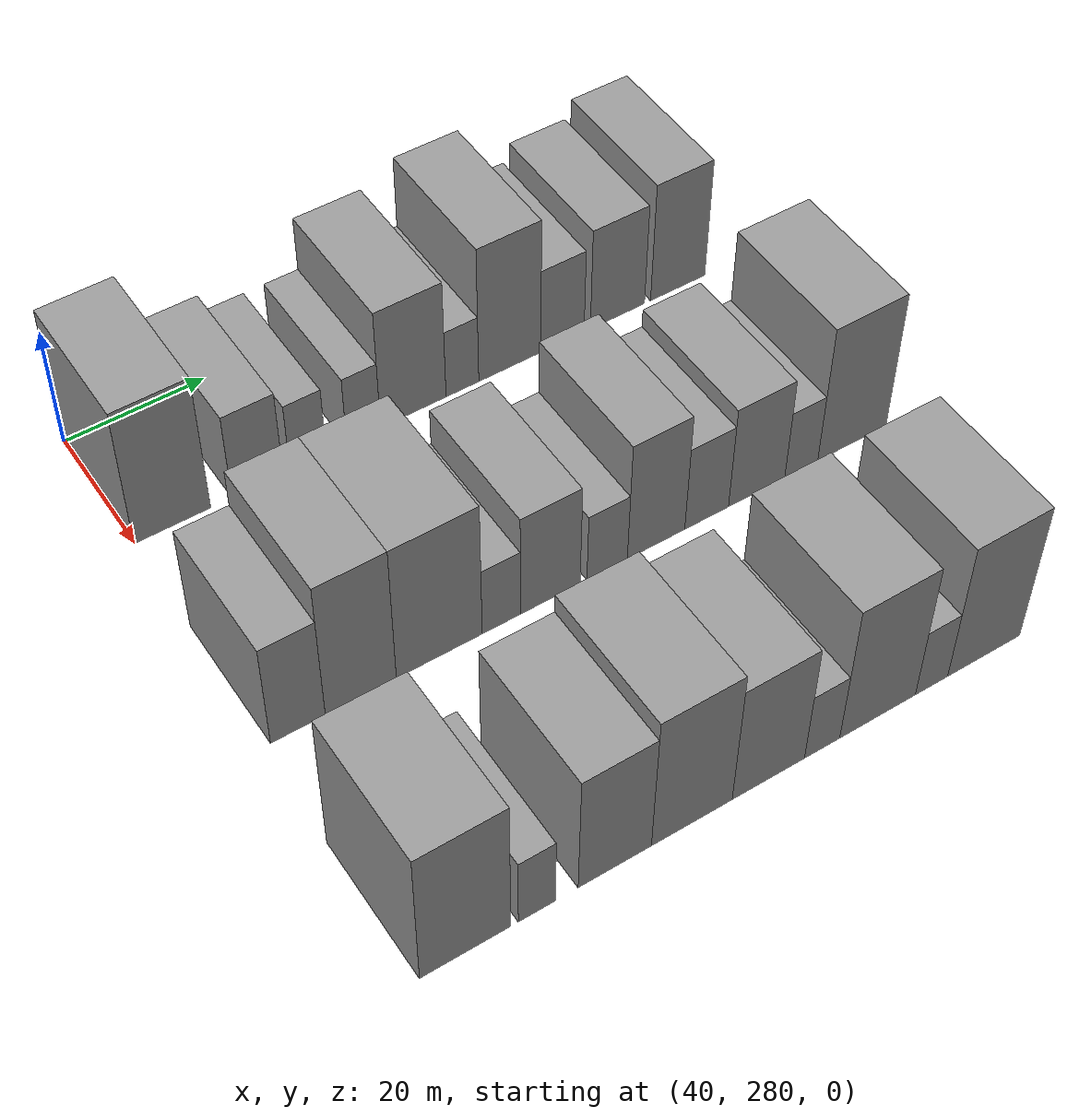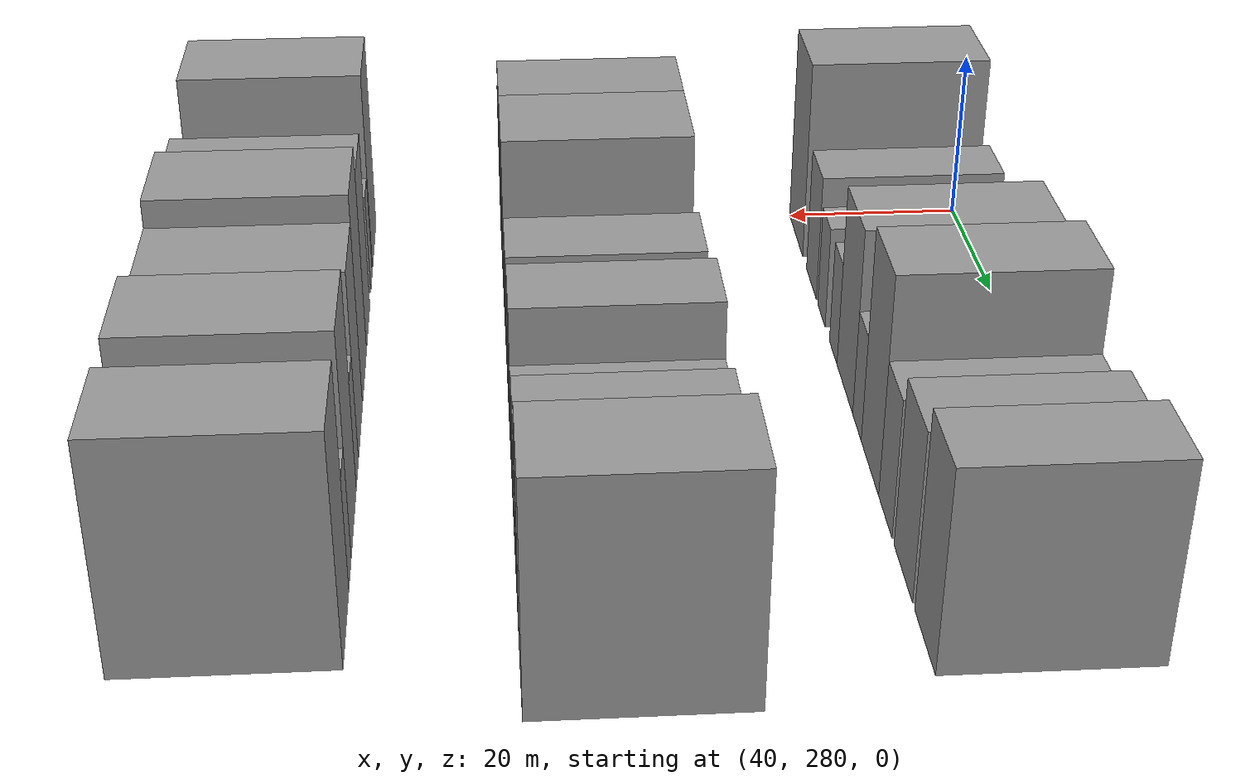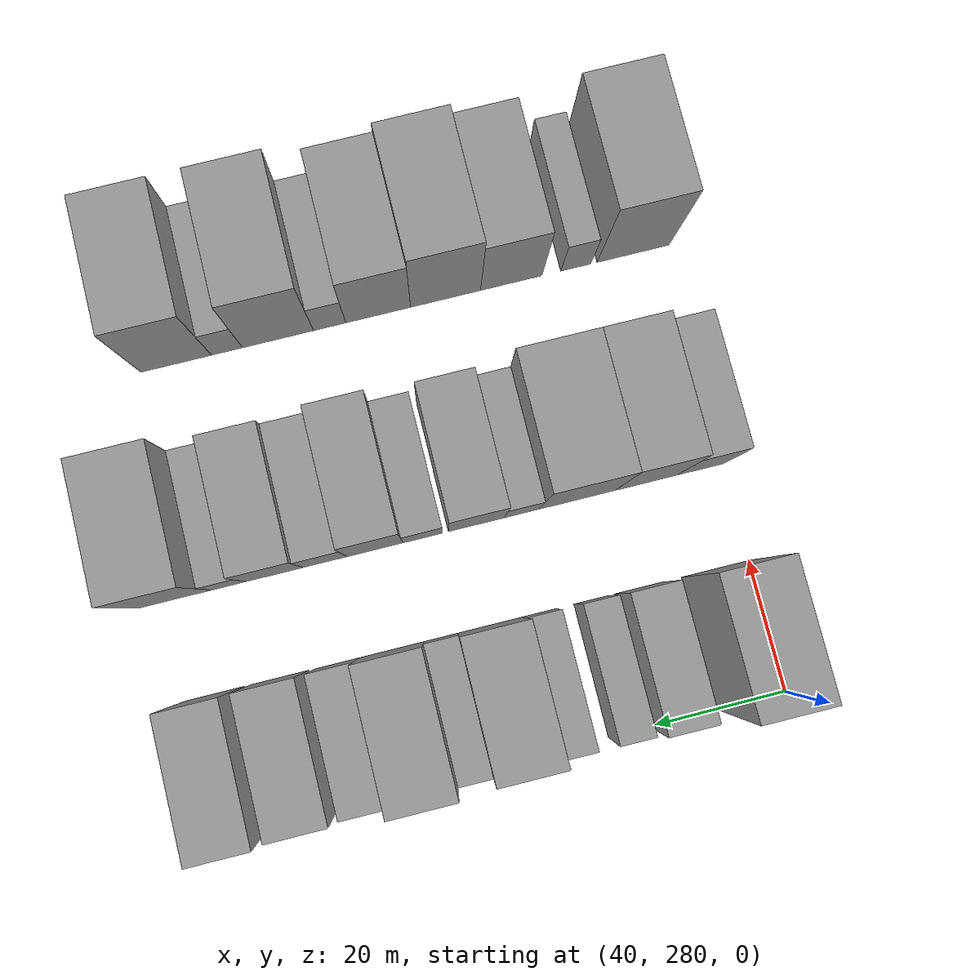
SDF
<sdf version="1.6">
 <world name="default">
  <model name="building_74">
   <static>1</static>
   <pose>50.0000 285.1842 0 0.000000 0.000000 0.000000</pose>
   <link name="link">
    <pose>0 0 12.00 0 0 0</pose>
    <collision name="collision"><geometry><box><size>20.0000 10.6870 24.0000</size></box></geometry></collision>
    <visual name="visual">
     <cast_shadows>0</cast_shadows>
     <geometry><box><size>20.0000 10.6870 24.0000</size></box></geometry>
     <material>
      <script>
       <uri>model://grey_wall/materials/scripts</uri>
       <uri>model://grey_wall/materials/textures</uri>
       <name>vrc/grey_wall</name>
      </script>
     </material>
    </visual>
   </link>
  </model>
  <model name="building_75">
   <static>1</static>
   <pose>50.0000 297.2003 0 0.000000 0.000000 0.000000</pose>
   <link name="link">
    <pose>0 0 7.50 0 0 0</pose>
    <collision name="collision"><geometry><box><size>20.0000 7.3452 15.0000</size></box></geometry></collision>
    <visual name="visual">
     <cast_shadows>0</cast_shadows>
     <geometry><box><size>20.0000 7.3452 15.0000</size></box></geometry>
     <material>
      <script>
       <uri>model://grey_wall/materials/scripts</uri>
       <uri>model://grey_wall/materials/textures</uri>
       <name>vrc/grey_wall</name>
      </script>
     </material>
    </visual>
   </link>
  </model>
  <model name="building_76">
   <static>1</static>
   <pose>50.0000 304.5186 0 0.000000 0.000000 0.000000</pose>
   <link name="link">
    <pose>0 0 6.00 0 0 0</pose>
    <collision name="collision"><geometry><box><size>20.0000 5.2914 12.0000</size></box></geometry></collision>
    <visual name="visual">
     <cast_shadows>0</cast_shadows>
     <geometry><box><size>20.0000 5.2914 12.0000</size></box></geometry>
     <material>
      <script>
       <uri>model://grey_wall/materials/scripts</uri>
       <uri>model://grey_wall/materials/textures</uri>
       <name>vrc/grey_wall</name>
      </script>
     </material>
    </visual>
   </link>
  </model>
  <model name="building_77">
   <static>1</static>
   <pose>50.0000 312.6815 0 0.000000 0.000000 0.000000</pose>
   <link name="link">
    <pose>0 0 6.00 0 0 0</pose>
    <collision name="collision"><geometry><box><size>20.0000 5.0343 12.0000</size></box></geometry></collision>
    <visual name="visual">
     <cast_shadows>0</cast_shadows>
     <geometry><box><size>20.0000 5.0343 12.0000</size></box></geometry>
     <material>
      <script>
       <uri>model://grey_wall/materials/scripts</uri>
       <uri>model://grey_wall/materials/textures</uri>
       <name>vrc/grey_wall</name>
      </script>
     </material>
    </visual>
   </link>
  </model>
  <model name="building_78">
   <static>1</static>
   <pose>50.0000 320.1442 0 0.000000 0.000000 0.000000</pose>
   <link name="link">
    <pose>0 0 10.50 0 0 0</pose>
    <collision name="collision"><geometry><box><size>20.0000 9.8911 21.0000</size></box></geometry></collision>
    <visual name="visual">
     <cast_shadows>0</cast_shadows>
     <geometry><box><size>20.0000 9.8911 21.0000</size></box></geometry>
     <material>
      <script>
       <uri>model://grey_wall/materials/scripts</uri>
       <uri>model://grey_wall/materials/textures</uri>
       <name>vrc/grey_wall</name>
      </script>
     </material>
    </visual>
   </link>
  </model>
  <model name="building_79">
   <static>1</static>
   <pose>50.0000 327.6104 0 0.000000 0.000000 0.000000</pose>
   <link name="link">
    <pose>0 0 6.00 0 0 0</pose>
    <collision name="collision"><geometry><box><size>20.0000 5.0414 12.0000</size></box></geometry></collision>
    <visual name="visual">
     <cast_shadows>0</cast_shadows>
     <geometry><box><size>20.0000 5.0414 12.0000</size></box></geometry>
     <material>
      <script>
       <uri>model://grey_wall/materials/scripts</uri>
       <uri>model://grey_wall/materials/textures</uri>
       <name>vrc/grey_wall</name>
      </script>
     </material>
    </visual>
   </link>
  </model>
  <model name="building_80">
   <static>1</static>
   <pose>50.0000 334.9761 0 0.000000 0.000000 0.000000</pose>
   <link name="link">
    <pose>0 0 12.00 0 0 0</pose>
    <collision name="collision"><geometry><box><size>20.0000 9.6899 24.0000</size></box></geometry></collision>
    <visual name="visual">
     <cast_shadows>0</cast_shadows>
     <geometry><box><size>20.0000 9.6899 24.0000</size></box></geometry>
     <material>
      <script>
       <uri>model://grey_wall/materials/scripts</uri>
       <uri>model://grey_wall/materials/textures</uri>
       <name>vrc/grey_wall</name>
      </script>
     </material>
    </visual>
   </link>
  </model>
  <model name="building_81">
   <static>1</static>
   <pose>50.0000 343.2819 0 0.000000 0.000000 0.000000</pose>
   <link name="link">
    <pose>0 0 7.50 0 0 0</pose>
    <collision name="collision"><geometry><box><size>20.0000 6.9216 15.0000</size></box></geometry></collision>
    <visual name="visual">
     <cast_shadows>0</cast_shadows>
     <geometry><box><size>20.0000 6.9216 15.0000</size></box></geometry>
     <material>
      <script>
       <uri>model://grey_wall/materials/scripts</uri>
       <uri>model://grey_wall/materials/textures</uri>
       <name>vrc/grey_wall</name>
      </script>
     </material>
    </visual>
   </link>
  </model>
  <model name="building_82">
   <static>1</static>
   <pose>50.0000 352.1523 0 0.000000 0.000000 0.000000</pose>
   <link name="link">
    <pose>0 0 9.00 0 0 0</pose>
    <collision name="collision"><geometry><box><size>20.0000 8.8193 18.0000</size></box></geometry></collision>
    <visual name="visual">
     <cast_shadows>0</cast_shadows>
     <geometry><box><size>20.0000 8.8193 18.0000</size></box></geometry>
     <material>
      <script>
       <uri>model://grey_wall/materials/scripts</uri>
       <uri>model://grey_wall/materials/textures</uri>
       <name>vrc/grey_wall</name>
      </script>
     </material>
    </visual>
   </link>
  </model>
  <model name="building_83">
   <static>1</static>
   <pose>50.0000 362.0714 0 0.000000 0.000000 0.000000</pose>
   <link name="link">
    <pose>0 0 10.50 0 0 0</pose>
    <collision name="collision"><geometry><box><size>20.0000 9.0189 21.0000</size></box></geometry></collision>
    <visual name="visual">
     <cast_shadows>0</cast_shadows>
     <geometry><box><size>20.0000 9.0189 21.0000</size></box></geometry>
     <material>
      <script>
       <uri>model://grey_wall/materials/scripts</uri>
       <uri>model://grey_wall/materials/textures</uri>
       <name>vrc/grey_wall</name>
      </script>
     </material>
    </visual>
   </link>
  </model>
  <model name="building_150">
   <static>1</static>
   <pose>85.0000 283.4918 0 0.000000 0.000000 0.000000</pose>
   <link name="link">
    <pose>0 0 9.00 0 0 0</pose>
    <collision name="collision"><geometry><box><size>20.0000 7.2559 18.0000</size></box></geometry></collision>
    <visual name="visual">
     <cast_shadows>0</cast_shadows>
     <geometry><box><size>20.0000 7.2559 18.0000</size></box></geometry>
     <material>
      <script>
       <uri>model://grey_wall/materials/scripts</uri>
       <uri>model://grey_wall/materials/textures</uri>
       <name>vrc/grey_wall</name>
      </script>
     </material>
    </visual>
   </link>
  </model>
  <model name="building_151">
   <static>1</static>
   <pose>85.0000 291.9271 0 0.000000 0.000000 0.000000</pose>
   <link name="link">
    <pose>0 0 12.00 0 0 0</pose>
    <collision name="collision"><geometry><box><size>20.0000 9.6149 24.0000</size></box></geometry></collision>
    <visual name="visual">
     <cast_shadows>0</cast_shadows>
     <geometry><box><size>20.0000 9.6149 24.0000</size></box></geometry>
     <material>
      <script>
       <uri>model://grey_wall/materials/scripts</uri>
       <uri>model://grey_wall/materials/textures</uri>
       <name>vrc/grey_wall</name>
      </script>
     </material>
    </visual>
   </link>
  </model>
  <model name="building_152">
   <static>1</static>
   <pose>85.0000 302.7061 0 0.000000 0.000000 0.000000</pose>
   <link name="link">
    <pose>0 0 12.00 0 0 0</pose>
    <collision name="collision"><geometry><box><size>20.0000 11.9430 24.0000</size></box></geometry></collision>
    <visual name="visual">
     <cast_shadows>0</cast_shadows>
     <geometry><box><size>20.0000 11.9430 24.0000</size></box></geometry>
     <material>
      <script>
       <uri>model://grey_wall/materials/scripts</uri>
       <uri>model://grey_wall/materials/textures</uri>
       <name>vrc/grey_wall</name>
      </script>
     </material>
    </visual>
   </link>
  </model>
  <model name="building_153">
   <static>1</static>
   <pose>85.0000 311.3905 0 0.000000 0.000000 0.000000</pose>
   <link name="link">
    <pose>0 0 6.00 0 0 0</pose>
    <collision name="collision"><geometry><box><size>20.0000 5.4257 12.0000</size></box></geometry></collision>
    <visual name="visual">
     <cast_shadows>0</cast_shadows>
     <geometry><box><size>20.0000 5.4257 12.0000</size></box></geometry>
     <material>
      <script>
       <uri>model://grey_wall/materials/scripts</uri>
       <uri>model://grey_wall/materials/textures</uri>
       <name>vrc/grey_wall</name>
      </script>
     </material>
    </visual>
   </link>
  </model>
  <model name="building_154">
   <static>1</static>
   <pose>85.0000 318.4247 0 0.000000 0.000000 0.000000</pose>
   <link name="link">
    <pose>0 0 9.00 0 0 0</pose>
    <collision name="collision"><geometry><box><size>20.0000 8.6428 18.0000</size></box></geometry></collision>
    <visual name="visual">
     <cast_shadows>0</cast_shadows>
     <geometry><box><size>20.0000 8.6428 18.0000</size></box></geometry>
     <material>
      <script>
       <uri>model://grey_wall/materials/scripts</uri>
       <uri>model://grey_wall/materials/textures</uri>
       <name>vrc/grey_wall</name>
      </script>
     </material>
    </visual>
   </link>
  </model>
  <model name="building_155">
   <static>1</static>
   <pose>85.0000 326.7354 0 0.000000 0.000000 0.000000</pose>
   <link name="link">
    <pose>0 0 6.00 0 0 0</pose>
    <collision name="collision"><geometry><box><size>20.0000 5.9786 12.0000</size></box></geometry></collision>
    <visual name="visual">
     <cast_shadows>0</cast_shadows>
     <geometry><box><size>20.0000 5.9786 12.0000</size></box></geometry>
     <material>
      <script>
       <uri>model://grey_wall/materials/scripts</uri>
       <uri>model://grey_wall/materials/textures</uri>
       <name>vrc/grey_wall</name>
      </script>
     </material>
    </visual>
   </link>
  </model>
  <model name="building_156">
   <static>1</static>
   <pose>85.0000 334.0470 0 0.000000 0.000000 0.000000</pose>
   <link name="link">
    <pose>0 0 10.50 0 0 0</pose>
    <collision name="collision"><geometry><box><size>20.0000 8.6446 21.0000</size></box></geometry></collision>
    <visual name="visual">
     <cast_shadows>0</cast_shadows>
     <geometry><box><size>20.0000 8.6446 21.0000</size></box></geometry>
     <material>
      <script>
       <uri>model://grey_wall/materials/scripts</uri>
       <uri>model://grey_wall/materials/textures</uri>
       <name>vrc/grey_wall</name>
      </script>
     </material>
    </visual>
   </link>
  </model>
  <model name="building_157">
   <static>1</static>
   <pose>85.0000 341.7238 0 0.000000 0.000000 0.000000</pose>
   <link name="link">
    <pose>0 0 7.50 0 0 0</pose>
    <collision name="collision"><geometry><box><size>20.0000 6.7090 15.0000</size></box></geometry></collision>
    <visual name="visual">
     <cast_shadows>0</cast_shadows>
     <geometry><box><size>20.0000 6.7090 15.0000</size></box></geometry>
     <material>
      <script>
       <uri>model://grey_wall/materials/scripts</uri>
       <uri>model://grey_wall/materials/textures</uri>
       <name>vrc/grey_wall</name>
      </script>
     </material>
    </visual>
   </link>
  </model>
  <model name="building_158">
   <static>1</static>
   <pose>85.0000 349.4756 0 0.000000 0.000000 0.000000</pose>
   <link name="link">
    <pose>0 0 9.00 0 0 0</pose>
    <collision name="collision"><geometry><box><size>20.0000 8.7945 18.0000</size></box></geometry></collision>
    <visual name="visual">
     <cast_shadows>0</cast_shadows>
     <geometry><box><size>20.0000 8.7945 18.0000</size></box></geometry>
     <material>
      <script>
       <uri>model://grey_wall/materials/scripts</uri>
       <uri>model://grey_wall/materials/textures</uri>
       <name>vrc/grey_wall</name>
      </script>
     </material>
    </visual>
   </link>
  </model>
  <model name="building_159">
   <static>1</static>
   <pose>85.0000 356.4946 0 0.000000 0.000000 0.000000</pose>
   <link name="link">
    <pose>0 0 6.00 0 0 0</pose>
    <collision name="collision"><geometry><box><size>20.0000 5.2436 12.0000</size></box></geometry></collision>
    <visual name="visual">
     <cast_shadows>0</cast_shadows>
     <geometry><box><size>20.0000 5.2436 12.0000</size></box></geometry>
     <material>
      <script>
       <uri>model://grey_wall/materials/scripts</uri>
       <uri>model://grey_wall/materials/textures</uri>
       <name>vrc/grey_wall</name>
      </script>
     </material>
    </visual>
   </link>
  </model>
  <model name="building_160">
   <static>1</static>
   <pose>85.0000 364.6530 0 0.000000 0.000000 0.000000</pose>
   <link name="link">
    <pose>0 0 12.00 0 0 0</pose>
    <collision name="collision"><geometry><box><size>20.0000 11.0730 24.0000</size></box></geometry></collision>
    <visual name="visual">
     <cast_shadows>0</cast_shadows>
     <geometry><box><size>20.0000 11.0730 24.0000</size></box></geometry>
     <material>
      <script>
       <uri>model://grey_wall/materials/scripts</uri>
       <uri>model://grey_wall/materials/textures</uri>
       <name>vrc/grey_wall</name>
      </script>
     </material>
    </visual>
   </link>
  </model>
  <model name="building_227">
   <static>1</static>
   <pose>120.0000 284.5555 0 0.000000 0.000000 0.000000</pose>
   <link name="link">
    <pose>0 0 12.00 0 0 0</pose>
    <collision name="collision"><geometry><box><size>20.0000 11.5598 24.0000</size></box></geometry></collision>
    <visual name="visual">
     <cast_shadows>0</cast_shadows>
     <geometry><box><size>20.0000 11.5598 24.0000</size></box></geometry>
     <material>
      <script>
       <uri>model://grey_wall/materials/scripts</uri>
       <uri>model://grey_wall/materials/textures</uri>
       <name>vrc/grey_wall</name>
      </script>
     </material>
    </visual>
   </link>
  </model>
  <model name="building_228">
   <static>1</static>
   <pose>120.0000 293.7430 0 0.000000 0.000000 0.000000</pose>
   <link name="link">
    <pose>0 0 6.00 0 0 0</pose>
    <collision name="collision"><geometry><box><size>20.0000 4.8150 12.0000</size></box></geometry></collision>
    <visual name="visual">
     <cast_shadows>0</cast_shadows>
     <geometry><box><size>20.0000 4.8150 12.0000</size></box></geometry>
     <material>
      <script>
       <uri>model://grey_wall/materials/scripts</uri>
       <uri>model://grey_wall/materials/textures</uri>
       <name>vrc/grey_wall</name>
      </script>
     </material>
    </visual>
   </link>
  </model>
  <model name="building_229">
   <static>1</static>
   <pose>120.0000 304.0560 0 0.000000 0.000000 0.000000</pose>
   <link name="link">
    <pose>0 0 10.50 0 0 0</pose>
    <collision name="collision"><geometry><box><size>20.0000 9.8111 21.0000</size></box></geometry></collision>
    <visual name="visual">
     <cast_shadows>0</cast_shadows>
     <geometry><box><size>20.0000 9.8111 21.0000</size></box></geometry>
     <material>
      <script>
       <uri>model://grey_wall/materials/scripts</uri>
       <uri>model://grey_wall/materials/textures</uri>
       <name>vrc/grey_wall</name>
      </script>
     </material>
    </visual>
   </link>
  </model>
  <model name="building_230">
   <static>1</static>
   <pose>120.0000 314.5234 0 0.000000 0.000000 0.000000</pose>
   <link name="link">
    <pose>0 0 12.00 0 0 0</pose>
    <collision name="collision"><geometry><box><size>20.0000 11.1237 24.0000</size></box></geometry></collision>
    <visual name="visual">
     <cast_shadows>0</cast_shadows>
     <geometry><box><size>20.0000 11.1237 24.0000</size></box></geometry>
     <material>
      <script>
       <uri>model://grey_wall/materials/scripts</uri>
       <uri>model://grey_wall/materials/textures</uri>
       <name>vrc/grey_wall</name>
      </script>
     </material>
    </visual>
   </link>
  </model>
  <model name="building_231">
   <static>1</static>
   <pose>120.0000 325.2143 0 0.000000 0.000000 0.000000</pose>
   <link name="link">
    <pose>0 0 10.50 0 0 0</pose>
    <collision name="collision"><geometry><box><size>20.0000 10.2581 21.0000</size></box></geometry></collision>
    <visual name="visual">
     <cast_shadows>0</cast_shadows>
     <geometry><box><size>20.0000 10.2581 21.0000</size></box></geometry>
     <material>
      <script>
       <uri>model://grey_wall/materials/scripts</uri>
       <uri>model://grey_wall/materials/textures</uri>
       <name>vrc/grey_wall</name>
      </script>
     </material>
    </visual>
   </link>
  </model>
  <model name="building_232">
   <static>1</static>
   <pose>120.0000 332.8897 0 0.000000 0.000000 0.000000</pose>
   <link name="link">
    <pose>0 0 6.00 0 0 0</pose>
    <collision name="collision"><geometry><box><size>20.0000 5.0926 12.0000</size></box></geometry></collision>
    <visual name="visual">
     <cast_shadows>0</cast_shadows>
     <geometry><box><size>20.0000 5.0926 12.0000</size></box></geometry>
     <material>
      <script>
       <uri>model://grey_wall/materials/scripts</uri>
       <uri>model://grey_wall/materials/textures</uri>
       <name>vrc/grey_wall</name>
      </script>
     </material>
    </visual>
   </link>
  </model>
  <model name="building_233">
   <static>1</static>
   <pose>120.0000 341.0300 0 0.000000 0.000000 0.000000</pose>
   <link name="link">
    <pose>0 0 12.00 0 0 0</pose>
    <collision name="collision"><geometry><box><size>20.0000 11.1879 24.0000</size></box></geometry></collision>
    <visual name="visual">
     <cast_shadows>0</cast_shadows>
     <geometry><box><size>20.0000 11.1879 24.0000</size></box></geometry>
     <material>
      <script>
       <uri>model://grey_wall/materials/scripts</uri>
       <uri>model://grey_wall/materials/textures</uri>
       <name>vrc/grey_wall</name>
      </script>
     </material>
    </visual>
   </link>
  </model>
  <model name="building_234">
   <static>1</static>
   <pose>120.0000 349.0585 0 0.000000 0.000000 0.000000</pose>
   <link name="link">
    <pose>0 0 6.00 0 0 0</pose>
    <collision name="collision"><geometry><box><size>20.0000 4.8692 12.0000</size></box></geometry></collision>
    <visual name="visual">
     <cast_shadows>0</cast_shadows>
     <geometry><box><size>20.0000 4.8692 12.0000</size></box></geometry>
     <material>
      <script>
       <uri>model://grey_wall/materials/scripts</uri>
       <uri>model://grey_wall/materials/textures</uri>
       <name>vrc/grey_wall</name>
      </script>
     </material>
    </visual>
   </link>
  </model>
  <model name="building_235">
   <static>1</static>
   <pose>120.0000 357.0394 0 0.000000 0.000000 0.000000</pose>
   <link name="link">
    <pose>0 0 12.00 0 0 0</pose>
    <collision name="collision"><geometry><box><size>20.0000 11.0924 24.0000</size></box></geometry></collision>
    <visual name="visual">
     <cast_shadows>0</cast_shadows>
     <geometry><box><size>20.0000 11.0924 24.0000</size></box></geometry>
     <material>
      <script>
       <uri>model://grey_wall/materials/scripts</uri>
       <uri>model://grey_wall/materials/textures</uri>
       <name>vrc/grey_wall</name>
      </script>
     </material>
    </visual>
   </link>
  </model>
 </world>
</sdf>
